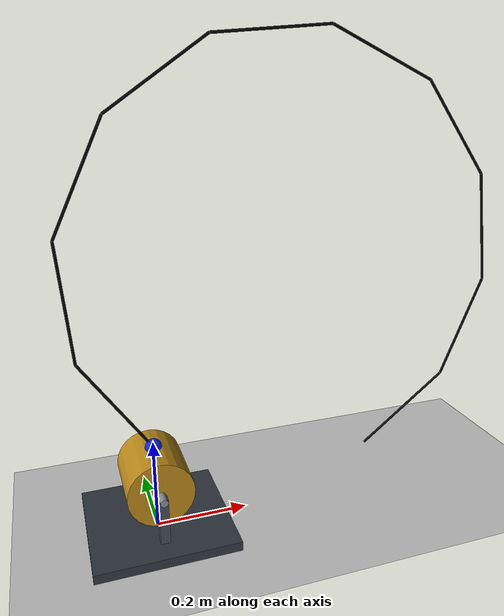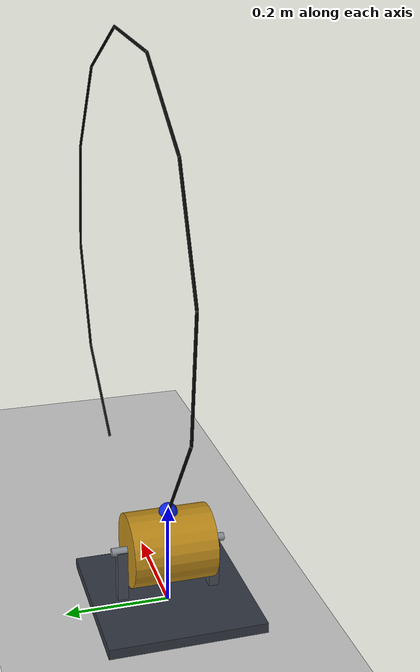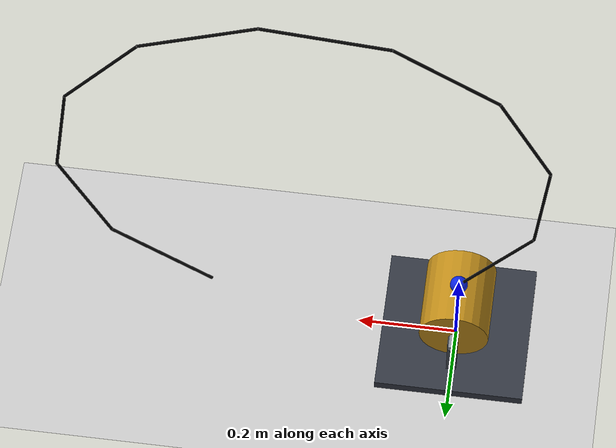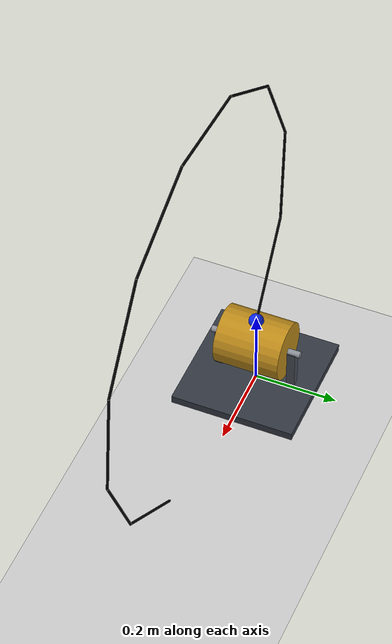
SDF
<sdf version="1.9">
 <world name="default">
  <physics type="ode">
   <max_step_size>0.004</max_step_size>
   <real_time_factor>1.0</real_time_factor>
   <real_time_update_rate>250</real_time_update_rate>
  </physics>
  <plugin name="gz::sim::systems::Physics" filename="gz-sim-physics-system"/>
  <plugin name="gz::sim::systems::UserCommands" filename="gz-sim-user-commands-system"/>
  <plugin name="gz::sim::systems::SceneBroadcaster" filename="gz-sim-scene-broadcaster-system"/>
  <plugin name="gz::sim::systems::Contact" filename="gz-sim-contact-system"/>
  <plugin name="gz::sim::systems::Imu" filename="gz-sim-imu-system"/>
  <plugin name="gz::sim::systems::AirPressure" filename="gz-sim-air-pressure-system"/>
  <plugin name="gz::sim::systems::Sensors" filename="gz-sim-sensors-system">
   <render_engine>ogre2</render_engine>
  </plugin>
  <gravity>0 0 -9.8</gravity>
  <magnetic_field>6e-06 2.3e-05 -4.2e-05</magnetic_field>
  <atmosphere type="adiabatic"/>
  <scene>
   <grid>false</grid>
   <ambient>0.4 0.4 0.4 1</ambient>
   <background>0.7 0.7 0.7 1</background>
   <shadows>true</shadows>
  </scene>
  <model name="ground_plane">
   <static>true</static>
   <link name="link">
    <collision name="collision">
     <geometry><plane><normal>0 0 1</normal><size>1 1</size></plane></geometry>
    </collision>
    <visual name="visual">
     <geometry><plane><normal>0 0 1</normal><size>100 100</size></plane></geometry>
     <material>
      <ambient>0.8 0.8 0.8 1</ambient>
      <diffuse>0.8 0.8 0.8 1</diffuse>
      <specular>0.8 0.8 0.8 1</specular>
     </material>
    </visual>
    <inertial>
     <mass>1</mass>
     <inertia><ixx>1</ixx><ixy>0</ixy><ixz>0</ixz><iyy>1</iyy><iyz>0</iyz><izz>1</izz></inertia>
    </inertial>
   </link>
  </model>
  <light name="sunUTC" type="directional">
   <pose>0 0 500 0 -0 0</pose>
   <intensity>1</intensity>
   <direction>0.001 0.625 -0.78</direction>
   <diffuse>0.904 0.904 0.904 1</diffuse>
   <specular>0.271 0.271 0.271 1</specular>
   <attenuation><range>2000</range><linear>0</linear><constant>1</constant><quadratic>0</quadratic></attenuation>
   <spot><inner_angle>0</inner_angle><outer_angle>0</outer_angle><falloff>0</falloff></spot>
  </light>
  <include><uri>model://tether_anchor_chain</uri><name>tether_anchor_chain</name></include>
  <joint name="tether_drone_ball" type="ball">
   <parent>tether_anchor_chain::tether_link_10</parent>
   <child>x500_tether_attach_0::base_link</child>
   <pose>0 0 -0.120000 0 0 0</pose>
  </joint>
 </world>
</sdf>

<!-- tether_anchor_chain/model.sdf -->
<sdf version="1.9">
  <model name="tether_anchor_chain">
    <static>false</static>
    <link name="ground_station_base">
      <pose>0 0 0 0 0 0</pose>
      <inertial>
        <mass>1.0</mass>
        <inertia>
          <ixx>1</ixx>
          <ixy>0</ixy>
          <ixz>0</ixz>
          <iyy>1</iyy>
          <iyz>0</iyz>
          <izz>1</izz>
        </inertia>
      </inertial>
      <visual name="ground_station_base_plate">
        <pose>0 0 0.01 0 0 0</pose>
        <geometry>
          <box>
            <size>0.3 0.3 0.02</size>
          </box>
        </geometry>
        <material>
          <diffuse>0.20 0.22 0.26 1.0</diffuse>
          <ambient>0.20 0.22 0.26 1.0</ambient>
        </material>
      </visual>
      <visual name="ground_station_base_post_left">
        <pose>0 0.09 0.07 0 0 0</pose>
        <geometry>
          <box>
            <size>0.02 0.02 0.1</size>
          </box>
        </geometry>
        <material>
          <diffuse>0.28 0.30 0.34 1.0</diffuse>
          <ambient>0.28 0.30 0.34 1.0</ambient>
        </material>
      </visual>
      <visual name="ground_station_base_post_right">
        <pose>0 -0.09 0.07 0 0 0</pose>
        <geometry>
          <box>
            <size>0.02 0.02 0.1</size>
          </box>
        </geometry>
        <material>
          <diffuse>0.28 0.30 0.34 1.0</diffuse>
          <ambient>0.28 0.30 0.34 1.0</ambient>
        </material>
      </visual>
      <visual name="ground_station_base_axle">
        <pose>0 0 0.12 1.57079632679 0 0</pose>
        <geometry>
          <cylinder>
            <radius>0.008</radius>
            <length>0.22</length>
          </cylinder>
        </geometry>
        <material>
          <diffuse>0.55 0.57 0.60 1.0</diffuse>
          <ambient>0.55 0.57 0.60 1.0</ambient>
        </material>
      </visual>

    </link>
    <joint name="ground_station_world_fixed" type="fixed">
      <parent>world</parent>
      <child>ground_station_base</child>
    </joint>
    <link name="reel_link">
      <pose relative_to="ground_station_base">0 0 0.12 0 0 0</pose>
      <inertial>
        <mass>0.2</mass>
        <inertia>
          <ixx>0.000671666667</ixx>
          <ixy>0</ixy>
          <ixz>0</ixz>
          <iyy>0.00049</iyy>
          <iyz>0</iyz>
          <izz>0.000671666667</izz>
        </inertia>
      </inertial>
      <visual name="reel_link_visual">
        <pose>0 0 0 1.57079632679 0 0</pose>
        <geometry>
          <cylinder>
            <radius>0.07</radius>
            <length>0.16</length>
          </cylinder>
        </geometry>
        <material>
          <diffuse>0.75 0.55 0.10 1.0</diffuse>
          <ambient>0.75 0.55 0.10 1.0</ambient>
        </material>
      </visual>
    </link>
    <joint name="reel_joint" type="revolute">
      <pose relative_to="reel_link">0 0 0 0 0 0</pose>
      <parent>ground_station_base</parent>
      <child>reel_link</child>
      <axis>
        <xyz>0 1 0</xyz>
        <limit>
          <lower>-1e16</lower>
          <upper>1e16</upper>
        </limit>
        <dynamics>
          <damping>0.005</damping>
          <friction>0</friction>
        </dynamics>
      </axis>
    </joint>
    <link name="tether_exit_point">
      <pose relative_to="ground_station_base">0 0 0.19 0 0 0</pose>
      <inertial>
        <mass>0.001</mass>
        <inertia>
          <ixx>1e-07</ixx>
          <ixy>0</ixy>
          <ixz>0</ixz>
          <iyy>1e-07</iyy>
          <iyz>0</iyz>
          <izz>1e-07</izz>
        </inertia>
      </inertial>
      <visual name="tether_exit_point_visual">
        <geometry>
          <sphere>
            <radius>0.018</radius>
          </sphere>
        </geometry>
        <material>
          <diffuse>0.05 0.15 0.9 1.0</diffuse>
          <ambient>0.05 0.15 0.9 1.0</ambient>
        </material>
      </visual>
    </link>
    <joint name="tether_exit_fixed" type="fixed">
      <parent>ground_station_base</parent>
      <child>tether_exit_point</child>
    </joint>

    <link name="tether_link_1">
      <pose relative_to="tether_exit_point">0 0 0 0 -0.970968025 3.14159265</pose>
      <inertial>
        <pose>0.125 0 0 0 1.57079632679 0</pose>
        <mass>0.015</mass>
        <inertia>
          <ixx>6.75e-08</ixx>
          <ixy>0</ixy>
          <ixz>0</ixz>
          <iyy>7.815875e-05</iyy>
          <iyz>0</iyz>
          <izz>7.815875e-05</izz>
        </inertia>
      </inertial>
      <visual name="tether_link_1_visual">
        <pose>0.125 0 0 0 1.57079632679 0</pose>
        <geometry>
          <cylinder>
            <radius>0.003</radius>
            <length>0.25</length>
          </cylinder>
        </geometry>
        <material>
          <diffuse>0.02 0.02 0.02 1.0</diffuse>
          <ambient>0.02 0.02 0.02 1.0</ambient>
        </material>
      </visual>

      <collision name="tether_link_1_collision">
        <pose>0.125 0 0 0 1.57079632679 0</pose>
        <geometry>
          <cylinder>
            <radius>0.00225</radius>
            <length>0.25</length>
          </cylinder>
        </geometry>
      </collision>
    </link>
    <joint name="tether_joint_1" type="ball">
      <pose relative_to="tether_exit_point">0 0 0 0 0 0</pose>
      <parent>tether_exit_point</parent>
      <child>tether_link_1</child>
    </joint>
    <link name="tether_link_2">
      <pose relative_to="tether_link_1">0.25 0 0 0 -0.518916575 0</pose>
      <inertial>
        <pose>0.125 0 0 0 1.57079632679 0</pose>
        <mass>0.015</mass>
        <inertia>
          <ixx>6.75e-08</ixx>
          <ixy>0</ixy>
          <ixz>0</ixz>
          <iyy>7.815875e-05</iyy>
          <iyz>0</iyz>
          <izz>7.815875e-05</izz>
        </inertia>
      </inertial>
      <visual name="tether_link_2_visual">
        <pose>0.125 0 0 0 1.57079632679 0</pose>
        <geometry>
          <cylinder>
            <radius>0.003</radius>
            <length>0.25</length>
          </cylinder>
        </geometry>
        <material>
          <diffuse>0.02 0.02 0.02 1.0</diffuse>
          <ambient>0.02 0.02 0.02 1.0</ambient>
        </material>
      </visual>

      <collision name="tether_link_2_collision">
        <pose>0.125 0 0 0 1.57079632679 0</pose>
        <geometry>
          <cylinder>
            <radius>0.00225</radius>
            <length>0.25</length>
          </cylinder>
        </geometry>
      </collision>
    </link>
    <joint name="tether_joint_2" type="ball">
      <pose relative_to="tether_link_1">0.25 0 0 0 0 0</pose>
      <parent>tether_link_1</parent>
      <child>tether_link_2</child>
    </joint>
    <link name="tether_link_3">
      <pose relative_to="tether_link_2">0.25 0 0 -3.14159265 -0.518916575 -5.98156903e-17</pose>
      <inertial>
        <pose>0.125 0 0 0 1.57079632679 0</pose>
        <mass>0.015</mass>
        <inertia>
          <ixx>6.75e-08</ixx>
          <ixy>0</ixy>
          <ixz>0</ixz>
          <iyy>7.815875e-05</iyy>
          <iyz>0</iyz>
          <izz>7.815875e-05</izz>
        </inertia>
      </inertial>
      <visual name="tether_link_3_visual">
        <pose>0.125 0 0 0 1.57079632679 0</pose>
        <geometry>
          <cylinder>
            <radius>0.003</radius>
            <length>0.25</length>
          </cylinder>
        </geometry>
        <material>
          <diffuse>0.02 0.02 0.02 1.0</diffuse>
          <ambient>0.02 0.02 0.02 1.0</ambient>
        </material>
      </visual>

      <collision name="tether_link_3_collision">
        <pose>0.125 0 0 0 1.57079632679 0</pose>
        <geometry>
          <cylinder>
            <radius>0.00225</radius>
            <length>0.25</length>
          </cylinder>
        </geometry>
      </collision>
    </link>
    <joint name="tether_joint_3" type="ball">
      <pose relative_to="tether_link_2">0.25 0 0 0 0 0</pose>
      <parent>tether_link_2</parent>
      <child>tether_link_3</child>
    </joint>
    <link name="tether_link_4">
      <pose relative_to="tether_link_3">0.25 0 0 0 0.518916575 0</pose>
      <inertial>
        <pose>0.125 0 0 0 1.57079632679 0</pose>
        <mass>0.015</mass>
        <inertia>
          <ixx>6.75e-08</ixx>
          <ixy>0</ixy>
          <ixz>0</ixz>
          <iyy>7.815875e-05</iyy>
          <iyz>0</iyz>
          <izz>7.815875e-05</izz>
        </inertia>
      </inertial>
      <visual name="tether_link_4_visual">
        <pose>0.125 0 0 0 1.57079632679 0</pose>
        <geometry>
          <cylinder>
            <radius>0.003</radius>
            <length>0.25</length>
          </cylinder>
        </geometry>
        <material>
          <diffuse>0.02 0.02 0.02 1.0</diffuse>
          <ambient>0.02 0.02 0.02 1.0</ambient>
        </material>
      </visual>

      <collision name="tether_link_4_collision">
        <pose>0.125 0 0 0 1.57079632679 0</pose>
        <geometry>
          <cylinder>
            <radius>0.00225</radius>
            <length>0.25</length>
          </cylinder>
        </geometry>
      </collision>
    </link>
    <joint name="tether_joint_4" type="ball">
      <pose relative_to="tether_link_3">0.25 0 0 0 0 0</pose>
      <parent>tether_link_3</parent>
      <child>tether_link_4</child>
    </joint>
    <link name="tether_link_5">
      <pose relative_to="tether_link_4">0.25 0 0 0 0.518916575 0</pose>
      <inertial>
        <pose>0.125 0 0 0 1.57079632679 0</pose>
        <mass>0.015</mass>
        <inertia>
          <ixx>6.75e-08</ixx>
          <ixy>0</ixy>
          <ixz>0</ixz>
          <iyy>7.815875e-05</iyy>
          <iyz>0</iyz>
          <izz>7.815875e-05</izz>
        </inertia>
      </inertial>
      <visual name="tether_link_5_visual">
        <pose>0.125 0 0 0 1.57079632679 0</pose>
        <geometry>
          <cylinder>
            <radius>0.003</radius>
            <length>0.25</length>
          </cylinder>
        </geometry>
        <material>
          <diffuse>0.02 0.02 0.02 1.0</diffuse>
          <ambient>0.02 0.02 0.02 1.0</ambient>
        </material>
      </visual>

      <collision name="tether_link_5_collision">
        <pose>0.125 0 0 0 1.57079632679 0</pose>
        <geometry>
          <cylinder>
            <radius>0.00225</radius>
            <length>0.25</length>
          </cylinder>
        </geometry>
      </collision>
    </link>
    <joint name="tether_joint_5" type="ball">
      <pose relative_to="tether_link_4">0.25 0 0 0 0 0</pose>
      <parent>tether_link_4</parent>
      <child>tether_link_5</child>
    </joint>
    <link name="tether_link_6">
      <pose relative_to="tether_link_5">0.25 0 0 0 0.518916575 0</pose>
      <inertial>
        <pose>0.125 0 0 0 1.57079632679 0</pose>
        <mass>0.015</mass>
        <inertia>
          <ixx>6.75e-08</ixx>
          <ixy>0</ixy>
          <ixz>0</ixz>
          <iyy>7.815875e-05</iyy>
          <iyz>0</iyz>
          <izz>7.815875e-05</izz>
        </inertia>
      </inertial>
      <visual name="tether_link_6_visual">
        <pose>0.125 0 0 0 1.57079632679 0</pose>
        <geometry>
          <cylinder>
            <radius>0.003</radius>
            <length>0.25</length>
          </cylinder>
        </geometry>
        <material>
          <diffuse>0.02 0.02 0.02 1.0</diffuse>
          <ambient>0.02 0.02 0.02 1.0</ambient>
        </material>
      </visual>

      <collision name="tether_link_6_collision">
        <pose>0.125 0 0 0 1.57079632679 0</pose>
        <geometry>
          <cylinder>
            <radius>0.00225</radius>
            <length>0.25</length>
          </cylinder>
        </geometry>
      </collision>
    </link>
    <joint name="tether_joint_6" type="ball">
      <pose relative_to="tether_link_5">0.25 0 0 0 0 0</pose>
      <parent>tether_link_5</parent>
      <child>tether_link_6</child>
    </joint>
    <link name="tether_link_7">
      <pose relative_to="tether_link_6">0.25 0 0 0 0.518916575 0</pose>
      <inertial>
        <pose>0.125 0 0 0 1.57079632679 0</pose>
        <mass>0.015</mass>
        <inertia>
          <ixx>6.75e-08</ixx>
          <ixy>0</ixy>
          <ixz>0</ixz>
          <iyy>7.815875e-05</iyy>
          <iyz>0</iyz>
          <izz>7.815875e-05</izz>
        </inertia>
      </inertial>
      <visual name="tether_link_7_visual">
        <pose>0.125 0 0 0 1.57079632679 0</pose>
        <geometry>
          <cylinder>
            <radius>0.003</radius>
            <length>0.25</length>
          </cylinder>
        </geometry>
        <material>
          <diffuse>0.02 0.02 0.02 1.0</diffuse>
          <ambient>0.02 0.02 0.02 1.0</ambient>
        </material>
      </visual>

      <collision name="tether_link_7_collision">
        <pose>0.125 0 0 0 1.57079632679 0</pose>
        <geometry>
          <cylinder>
            <radius>0.00225</radius>
            <length>0.25</length>
          </cylinder>
        </geometry>
      </collision>
    </link>
    <joint name="tether_joint_7" type="ball">
      <pose relative_to="tether_link_6">0.25 0 0 0 0 0</pose>
      <parent>tether_link_6</parent>
      <child>tether_link_7</child>
    </joint>
    <link name="tether_link_8">
      <pose relative_to="tether_link_7">0.25 0 0 0 0.518916575 0</pose>
      <inertial>
        <pose>0.125 0 0 0 1.57079632679 0</pose>
        <mass>0.015</mass>
        <inertia>
          <ixx>6.75e-08</ixx>
          <ixy>0</ixy>
          <ixz>0</ixz>
          <iyy>7.815875e-05</iyy>
          <iyz>0</iyz>
          <izz>7.815875e-05</izz>
        </inertia>
      </inertial>
      <visual name="tether_link_8_visual">
        <pose>0.125 0 0 0 1.57079632679 0</pose>
        <geometry>
          <cylinder>
            <radius>0.003</radius>
            <length>0.25</length>
          </cylinder>
        </geometry>
        <material>
          <diffuse>0.02 0.02 0.02 1.0</diffuse>
          <ambient>0.02 0.02 0.02 1.0</ambient>
        </material>
      </visual>

      <collision name="tether_link_8_collision">
        <pose>0.125 0 0 0 1.57079632679 0</pose>
        <geometry>
          <cylinder>
            <radius>0.00225</radius>
            <length>0.25</length>
          </cylinder>
        </geometry>
      </collision>
    </link>
    <joint name="tether_joint_8" type="ball">
      <pose relative_to="tether_link_7">0.25 0 0 0 0 0</pose>
      <parent>tether_link_7</parent>
      <child>tether_link_8</child>
    </joint>
    <link name="tether_link_9">
      <pose relative_to="tether_link_8">0.25 0 0 -3.14159265 0.518916575 5.62045792e-17</pose>
      <inertial>
        <pose>0.125 0 0 0 1.57079632679 0</pose>
        <mass>0.015</mass>
        <inertia>
          <ixx>6.75e-08</ixx>
          <ixy>0</ixy>
          <ixz>0</ixz>
          <iyy>7.815875e-05</iyy>
          <iyz>0</iyz>
          <izz>7.815875e-05</izz>
        </inertia>
      </inertial>
      <visual name="tether_link_9_visual">
        <pose>0.125 0 0 0 1.57079632679 0</pose>
        <geometry>
          <cylinder>
            <radius>0.003</radius>
            <length>0.25</length>
          </cylinder>
        </geometry>
        <material>
          <diffuse>0.02 0.02 0.02 1.0</diffuse>
          <ambient>0.02 0.02 0.02 1.0</ambient>
        </material>
      </visual>

      <collision name="tether_link_9_collision">
        <pose>0.125 0 0 0 1.57079632679 0</pose>
        <geometry>
          <cylinder>
            <radius>0.00225</radius>
            <length>0.25</length>
          </cylinder>
        </geometry>
      </collision>
    </link>
    <joint name="tether_joint_9" type="ball">
      <pose relative_to="tether_link_8">0.25 0 0 0 0 0</pose>
      <parent>tether_link_8</parent>
      <child>tether_link_9</child>
    </joint>
    <link name="tether_link_10">
      <pose relative_to="tether_link_9">0.25 0 0 0 -0.518916575 0</pose>
      <inertial>
        <pose>0.125 0 0 0 1.57079632679 0</pose>
        <mass>0.015</mass>
        <inertia>
          <ixx>6.75e-08</ixx>
          <ixy>0</ixy>
          <ixz>0</ixz>
          <iyy>7.815875e-05</iyy>
          <iyz>0</iyz>
          <izz>7.815875e-05</izz>
        </inertia>
      </inertial>
      <visual name="tether_link_10_visual">
        <pose>0.125 0 0 0 1.57079632679 0</pose>
        <geometry>
          <cylinder>
            <radius>0.003</radius>
            <length>0.25</length>
          </cylinder>
        </geometry>
        <material>
          <diffuse>0.05 0.05 0.05 1.0</diffuse>
          <ambient>0.05 0.05 0.05 1.0</ambient>
        </material>
      </visual>

      <collision name="tether_link_10_collision">
        <pose>0.125 0 0 0 1.57079632679 0</pose>
        <geometry>
          <cylinder>
            <radius>0.00225</radius>
            <length>0.25</length>
          </cylinder>
        </geometry>
      </collision>
    </link>
    <joint name="tether_joint_10" type="ball">
      <pose relative_to="tether_link_9">0.25 0 0 0 0 0</pose>
      <parent>tether_link_9</parent>
      <child>tether_link_10</child>
    </joint>
  </model>
</sdf>
